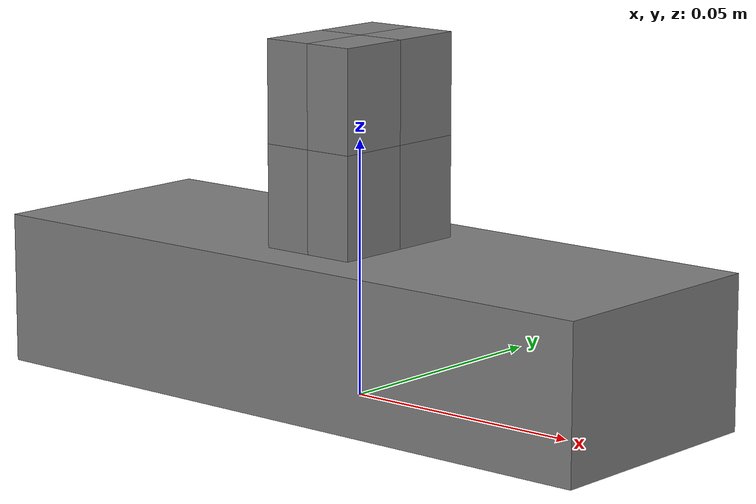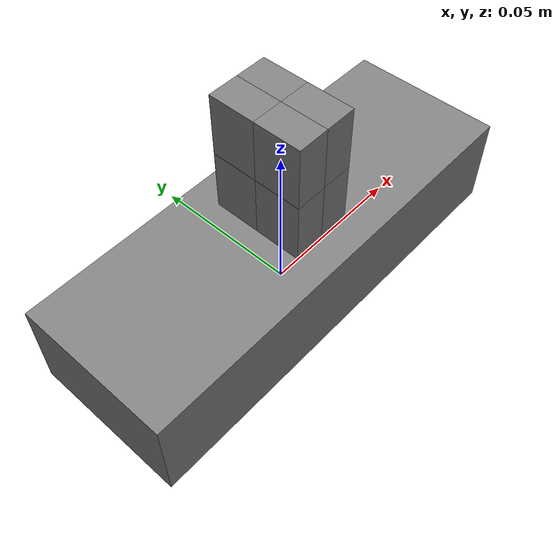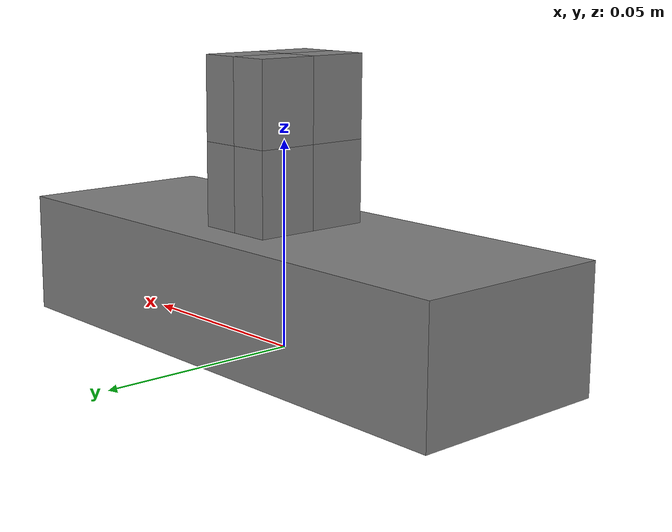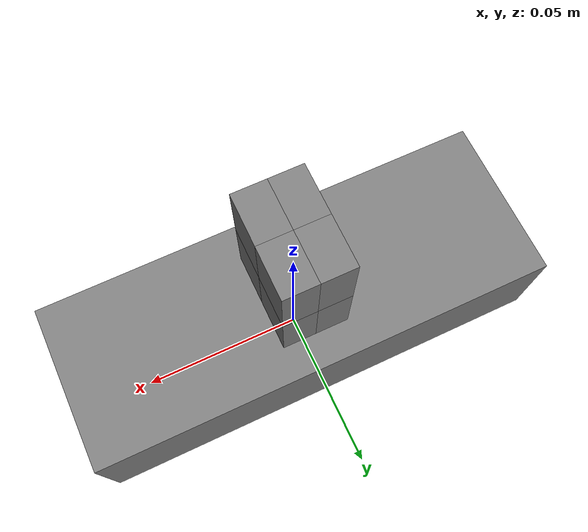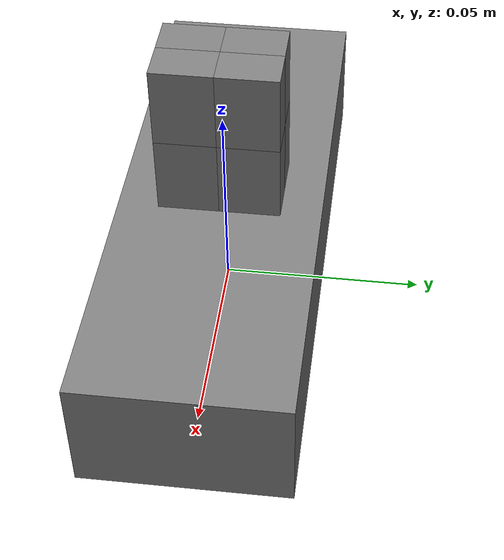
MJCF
<?xml version="1.0" encoding="UTF-8"?>
<mujoco model="single_gripper">
    <worldbody>
        <body name="gripper_base" pos="0 0 0" quat="1 0 0 0">
            <inertial pos="0.035 0.0125 0.015" mass="0.73" diaginertia="0.001 0.0025 0.0017" />
            <geom type="box" condim="3" size="0.07 0.025 0.015" pos="0.0 0.0 0.015"
                friction="2.0 0.01 0.01" solimp="0.99 0.9999 0.001 0.5 2.0" solref="0.002 1.0"
                priority="1" />
            <body name="left_plate" pos="0.005 0.0 0.05" quat="1 0 0 0">
                <inertial pos="0.0 0.0 0.0" mass="0.015" diaginertia="2.375e-6 2.375e-6 7.5e-7" />
                <geom type="box" condim="3" pos="0.0 -0.0075 -0.01" size="0.005 0.0075 0.01"
                    friction="2.0 0.01 0.01" solimp="0.99 0.9999 0.001 0.5 2.0" solref="0.002 1.0"
                    priority="1" />
                <geom type="box" condim="3" pos="0.0 -0.0075 0.01" size="0.005 0.0075 0.01"
                    friction="2.0 0.01 0.01" solimp="0.99 0.9999 0.001 0.5 2.0" solref="0.002 1.0"
                    priority="1" />
                <geom type="box" condim="3" pos="0.0 0.0075 -0.01" size="0.005 0.0075 0.01"
                    friction="2.0 0.01 0.01" solimp="0.99 0.9999 0.001 0.5 2.0" solref="0.002 1.0"
                    priority="1" />
                <geom type="box" condim="3" pos="0.0 0.0075 0.01" size="0.005 0.0075 0.01"
                    friction="2.0 0.01 0.01" solimp="0.99 0.9999 0.001 0.5 2.0" solref="0.002 1.0"
                    priority="1" />
                <joint name="left_plate_slide_joint" type="slide" axis="1 0 0" limited="true"
                    range="0.0 0.060000000000000005" />
            </body>
            <body name="right_plate" pos="-0.005 0.0 0.05" quat="0 0 0 1">
                <inertial pos="0.0 0.0 0.0" mass="0.015" diaginertia="2.375e-6 2.375e-6 7.5e-7" />
                <geom type="box" condim="3" pos="0.0 -0.0075 -0.01" size="0.005 0.0075 0.01"
                    friction="2.0 0.01 0.01" solimp="0.99 0.9999 0.001 0.5 2.0" solref="0.002 1.0"
                    priority="1" />
                <geom type="box" condim="3" pos="0.0 -0.0075 0.01" size="0.005 0.0075 0.01"
                    friction="2.0 0.01 0.01" solimp="0.99 0.9999 0.001 0.5 2.0" solref="0.002 1.0"
                    priority="1" />
                <geom type="box" condim="3" pos="0.0 0.0075 -0.01" size="0.005 0.0075 0.01"
                    friction="2.0 0.01 0.01" solimp="0.99 0.9999 0.001 0.5 2.0" solref="0.002 1.0"
                    priority="1" />
                <geom type="box" condim="3" pos="0.0 0.0075 0.01" size="0.005 0.0075 0.01"
                    friction="2.0 0.01 0.01" solimp="0.99 0.9999 0.001 0.5 2.0" solref="0.002 1.0"
                    priority="1" />
                <joint name="right_plate_slide_joint" type="slide" axis="1 0 0" limited="true"
                    range="0.0 0.060000000000000005" />
            </body>
            <site name="between_gripper_plates" pos="0.0 0.0 0.05" />
        </body>
    </worldbody>
    <equality>
        <joint joint1="left_plate_slide_joint" joint2="right_plate_slide_joint"
            solimp="0.98 0.9999 0.001" solref="0.002 1.0" />
    </equality>
    <contact>
        <exclude body1="gripper_base" body2="left_plate" />
        <exclude body1="gripper_base" body2="right_plate" />
        <exclude body1="left_plate" body2="right_plate" />
    </contact>
    <tendon>
        <fixed name="split">
            <joint joint="left_plate_slide_joint" coef="0.5" />
            <joint joint="right_plate_slide_joint" coef="0.5" />
        </fixed>
    </tendon>
    <actuator>
        <general name="gripper_linear_actuator" tendon="split" dyntype="none" biastype="affine"
            forcerange="-100 100" ctrlrange="0.0 0.060000000000000005" gainprm="100 0 0"
            biasprm="0 -100 -10" />
    </actuator>
</mujoco>
